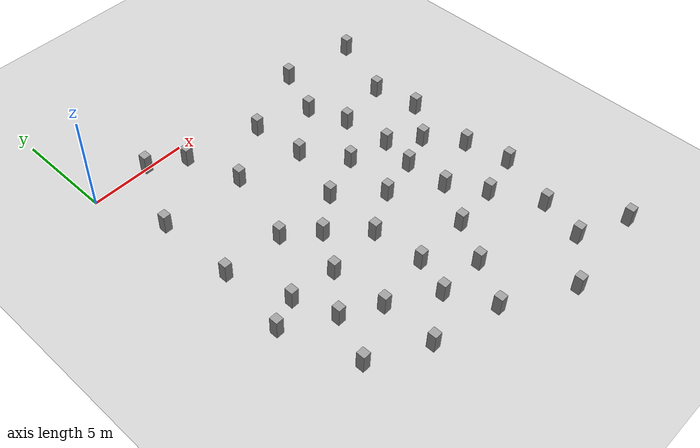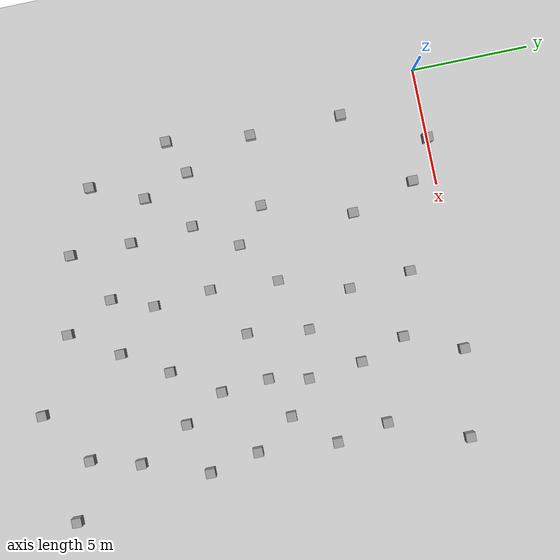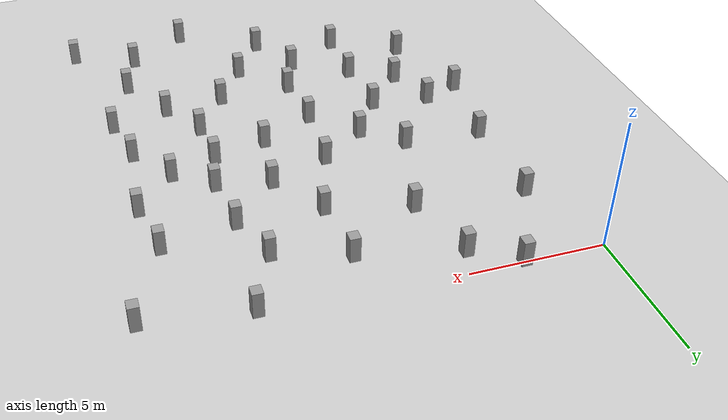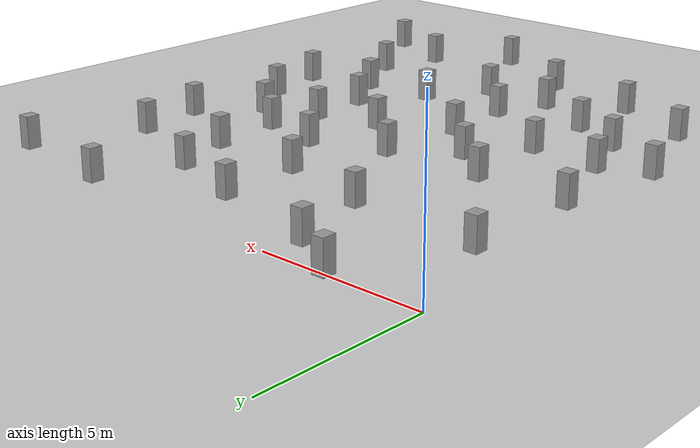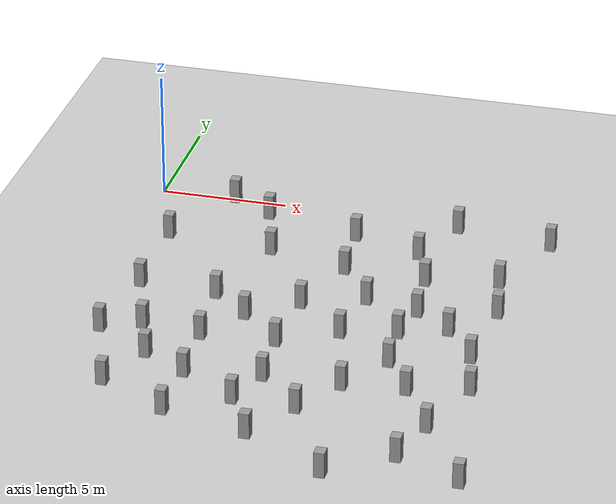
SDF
<sdf version="1.10">
 <world name="obstacle_field">
  <model name="ground_plane">
   <static>true</static>
   <link name="link">
    <collision name="collision">
     <geometry><plane><normal>0 0 1</normal><size>100 100</size></plane></geometry>
     <surface>
      <friction><ode><mu>1000</mu><mu2>1000</mu2><slip1>0</slip1><slip2>0</slip2></ode></friction>
      <bounce><restitution_coefficient>0</restitution_coefficient></bounce>
     </surface>
    </collision>
    <visual name="visual">
     <cast_shadows>false</cast_shadows>
     <geometry><plane><normal>0 0 1</normal><size>100 100</size></plane></geometry>
     <material>
      <script><uri>file://media/materials/scripts/gazebo.material</uri><name>Gazebo/Grey</name></script>
     </material>
    </visual>
    <inertial>
     <mass>1</mass>
     <inertia><ixx>1</ixx><ixy>0</ixy><ixz>0</ixz><iyy>1</iyy><iyz>0</iyz><izz>1</izz></inertia>
    </inertial>
   </link>
  </model>
  <model name="unit_box_0_clone_3">
   <static>true</static>
   <pose>8.3935060501098633 -1.9078499078750608 0.50000220537185669 -1.370750240686099e-06 -1.9236804040479009e-06 -0.00054700212289131452</pose>
   <link name="link">
    <inertial>
     <mass>1</mass>
     <inertia>
      <ixx>0.16666700000000001</ixx>
      <ixy>0</ixy>
      <ixz>0</ixz>
      <iyy>0.16666700000000001</iyy>
      <iyz>0</iyz>
      <izz>0.16666700000000001</izz>
     </inertia>
    </inertial>
    <collision name="collision">
     <geometry><box><size>0.392878 0.42264299999999999 1</size></box></geometry>
    </collision>
    <visual name="visual">
     <geometry><box><size>0.392878 0.42264299999999999 1</size></box></geometry>
     <material>
      <script><name>Gazebo/Grey</name><uri>file://media/materials/scripts/gazebo.material</uri></script>
     </material>
    </visual>
   </link>
  </model>
  <model name="unit_box_0_clone_5_clone_1">
   <static>true</static>
   <pose>8.6066904067993146 -4.5795798301696777 0.49999898672103876 -6.4980005139673518e-08 -6.4980100031907793e-08 -0.00061501101022146956</pose>
   <link name="link">
    <inertial>
     <mass>1</mass>
     <inertia>
      <ixx>0.16666700000000001</ixx>
      <ixy>0</ixy>
      <ixz>0</ixz>
      <iyy>0.16666700000000001</iyy>
      <iyz>0</iyz>
      <izz>0.16666700000000001</izz>
     </inertia>
    </inertial>
    <collision name="collision">
     <geometry><box><size>0.392878 0.42264299999999999 1</size></box></geometry>
    </collision>
    <visual name="visual">
     <geometry><box><size>0.392878 0.42264299999999999 1</size></box></geometry>
     <material>
      <script><name>Gazebo/Grey</name><uri>file://media/materials/scripts/gazebo.material</uri></script>
     </material>
    </visual>
   </link>
  </model>
  <model name="unit_box_0_clone_5_clone_2">
   <static>true</static>
   <pose>11.079571723937987 -2.7620170116424569 0.49999886751174927 -1.2996001171595163e-07 6.4980000871064096e-08 -0.0006110100471822395</pose>
   <link name="link">
    <inertial>
     <mass>1</mass>
     <inertia>
      <ixx>0.16666700000000001</ixx>
      <ixy>0</ixy>
      <ixz>0</ixz>
      <iyy>0.16666700000000001</iyy>
      <iyz>0</iyz>
      <izz>0.16666700000000001</izz>
     </inertia>
    </inertial>
    <collision name="collision">
     <geometry><box><size>0.392878 0.42264299999999999 1</size></box></geometry>
    </collision>
    <visual name="visual">
     <geometry><box><size>0.392878 0.42264299999999999 1</size></box></geometry>
     <material>
      <script><name>Gazebo/Grey</name><uri>file://media/materials/scripts/gazebo.material</uri></script>
     </material>
    </visual>
   </link>
  </model>
  <model name="unit_box_0_clone_5_clone_3">
   <static>true</static>
   <pose>11.777527809143065 -4.7175898551940918 0.49999967217445368 -1.9494004406307468e-07 6.4980013555370398e-08 -0.00059401012260828481</pose>
   <link name="link">
    <inertial>
     <mass>1</mass>
     <inertia>
      <ixx>0.16666700000000001</ixx>
      <ixy>0</ixy>
      <ixz>0</ixz>
      <iyy>0.16666700000000001</iyy>
      <iyz>0</iyz>
      <izz>0.16666700000000001</izz>
     </inertia>
    </inertial>
    <collision name="collision">
     <geometry><box><size>0.392878 0.42264299999999999 1</size></box></geometry>
    </collision>
    <visual name="visual">
     <geometry><box><size>0.392878 0.42264299999999999 1</size></box></geometry>
     <material>
      <script><name>Gazebo/Grey</name><uri>file://media/materials/scripts/gazebo.material</uri></script>
     </material>
    </visual>
   </link>
  </model>
  <model name="unit_box_0_clone_5_clone_2_clone_1">
   <static>true</static>
   <pose>4.6627094992486624 -1.0221909996353336 0.49999999632621162 -5.3290856622420438e-13 5.7520338949519755e-13 -0.00074748900662532502</pose>
   <link name="link">
    <inertial>
     <mass>1</mass>
     <inertia>
      <ixx>0.16666700000000001</ixx>
      <ixy>0</ixy>
      <ixz>0</ixz>
      <iyy>0.16666700000000001</iyy>
      <iyz>0</iyz>
      <izz>0.16666700000000001</izz>
     </inertia>
    </inertial>
    <collision name="collision">
     <geometry><box><size>0.392878 0.42264299999999999 1</size></box></geometry>
    </collision>
    <visual name="visual">
     <geometry><box><size>0.392878 0.42264299999999999 1</size></box></geometry>
     <material>
      <script><name>Gazebo/Grey</name><uri>file://media/materials/scripts/gazebo.material</uri></script>
     </material>
    </visual>
   </link>
  </model>
  <model name="unit_box_0_clone_5_clone_2_clone_2">
   <static>true</static>
   <pose>2.9894994992669472 -0.022526999643910483 0.49999999632621162 -5.3119264489559768e-13 5.6826736232843934e-13 -0.00072945448038697004</pose>
   <link name="link">
    <inertial>
     <mass>1</mass>
     <inertia>
      <ixx>0.16666700000000001</ixx>
      <ixy>0</ixy>
      <ixz>0</ixz>
      <iyy>0.16666700000000001</iyy>
      <iyz>0</iyz>
      <izz>0.16666700000000001</izz>
     </inertia>
    </inertial>
    <collision name="collision">
     <geometry><box><size>0.392878 0.42264299999999999 1</size></box></geometry>
    </collision>
    <visual name="visual">
     <geometry><box><size>0.392878 0.42264299999999999 1</size></box></geometry>
     <material>
      <script><name>Gazebo/Grey</name><uri>file://media/materials/scripts/gazebo.material</uri></script>
     </material>
    </visual>
   </link>
  </model>
  <model name="unit_box_0_clone_5_clone_2_clone_3">
   <static>true</static>
   <pose>12.111514091491701 -0.32596516609191872 0.50001299381256092 1.8970301151387148e-08 -6.8920802442025963e-06 -0.00060902103265276749</pose>
   <link name="link">
    <inertial>
     <mass>1</mass>
     <inertia>
      <ixx>0.16666700000000001</ixx>
      <ixy>0</ixy>
      <ixz>0</ixz>
      <iyy>0.16666700000000001</iyy>
      <iyz>0</iyz>
      <izz>0.16666700000000001</izz>
     </inertia>
    </inertial>
    <collision name="collision">
     <geometry><box><size>0.392878 0.42264299999999999 1</size></box></geometry>
    </collision>
    <visual name="visual">
     <geometry><box><size>0.392878 0.42264299999999999 1</size></box></geometry>
     <material>
      <script><name>Gazebo/Grey</name><uri>file://media/materials/scripts/gazebo.material</uri></script>
     </material>
    </visual>
   </link>
  </model>
  <model name="unit_box_0_clone_5_clone_2_clone_5">
   <static>true</static>
   <pose>14.542879104614256 -4.1722455024719238 0.49999919533729553 -1.299600133939024e-07 6.4980100587631842e-08 -0.00063201201838560179</pose>
   <link name="link">
    <inertial>
     <mass>1</mass>
     <inertia>
      <ixx>0.16666700000000001</ixx>
      <ixy>0</ixy>
      <ixz>0</ixz>
      <iyy>0.16666700000000001</iyy>
      <iyz>0</iyz>
      <izz>0.16666700000000001</izz>
     </inertia>
    </inertial>
    <collision name="collision">
     <geometry><box><size>0.392878 0.42264299999999999 1</size></box></geometry>
    </collision>
    <visual name="visual">
     <geometry><box><size>0.392878 0.42264299999999999 1</size></box></geometry>
     <material>
      <script><name>Gazebo/Grey</name><uri>file://media/materials/scripts/gazebo.material</uri></script>
     </material>
    </visual>
   </link>
  </model>
  <model name="unit_box_0_clone_5_clone_2_clone_1_clone">
   <static>true</static>
   <pose>15.868999998624535 -0.84647450002033475 0.49999999632621167 -5.2823337413909975e-13 -1.9489132497437662e-14 -0.00091790506168357654</pose>
   <link name="link">
    <inertial>
     <mass>1</mass>
     <inertia>
      <ixx>0.16666700000000001</ixx>
      <ixy>0</ixy>
      <ixz>0</ixz>
      <iyy>0.16666700000000001</iyy>
      <iyz>0</iyz>
      <izz>0.16666700000000001</izz>
     </inertia>
    </inertial>
    <collision name="collision">
     <geometry><box><size>0.392878 0.42264299999999999 1</size></box></geometry>
    </collision>
    <visual name="visual">
     <geometry><box><size>0.392878 0.42264299999999999 1</size></box></geometry>
     <material>
      <script><name>Gazebo/Grey</name><uri>file://media/materials/scripts/gazebo.material</uri></script>
     </material>
    </visual>
   </link>
  </model>
  <model name="unit_box_0_clone_5_clone_2_clone_1_clone_12_clone_17">
   <static>true</static>
   <pose>13.449499499305386 -8.1300309996619404 0.49999999632621162 -5.3231377874571155e-13 5.7524638652942647e-13 -0.00069138701276590358</pose>
   <link name="link">
    <inertial>
     <mass>1</mass>
     <inertia>
      <ixx>0.16666700000000001</ixx>
      <ixy>0</ixy>
      <ixz>0</ixz>
      <iyy>0.16666700000000001</iyy>
      <iyz>0</iyz>
      <izz>0.16666700000000001</izz>
     </inertia>
    </inertial>
    <collision name="collision">
     <geometry><box><size>0.392878 0.42264299999999999 1</size></box></geometry>
    </collision>
    <visual name="visual">
     <geometry><box><size>0.392878 0.42264299999999999 1</size></box></geometry>
     <material>
      <script><name>Gazebo/Grey</name><uri>file://media/materials/scripts/gazebo.material</uri></script>
     </material>
    </visual>
   </link>
  </model>
  <model name="unit_box_0_clone_5_clone_2_clone_1_clone_12_clone_20">
   <static>true</static>
   <pose>12.021301000344698 -7.067259500671585 0.49999999632621162 5.3156629166166774e-13 -5.7335368383454186e-13 -0.00067536073283902499</pose>
   <link name="link">
    <inertial>
     <mass>1</mass>
     <inertia>
      <ixx>0.16666700000000001</ixx>
      <ixy>0</ixy>
      <ixz>0</ixz>
      <iyy>0.16666700000000001</iyy>
      <iyz>0</iyz>
      <izz>0.16666700000000001</izz>
     </inertia>
    </inertial>
    <collision name="collision">
     <geometry><box><size>0.392878 0.42264299999999999 1</size></box></geometry>
    </collision>
    <visual name="visual">
     <geometry><box><size>0.392878 0.42264299999999999 1</size></box></geometry>
     <material>
      <script><name>Gazebo/Grey</name><uri>file://media/materials/scripts/gazebo.material</uri></script>
     </material>
    </visual>
   </link>
  </model>
  <model name="unit_box_0_clone_5_clone_2_clone_1_clone_12_clone_21">
   <static>true</static>
   <pose>9.9687220010228152 -6.629618501339718 0.49999999632621073 5.2740098967060101e-13 -5.6743274638398541e-13 -0.00067435912718340435</pose>
   <link name="link">
    <inertial>
     <mass>1</mass>
     <inertia>
      <ixx>0.16666700000000001</ixx>
      <ixy>0</ixy>
      <ixz>0</ixz>
      <iyy>0.16666700000000001</iyy>
      <iyz>0</iyz>
      <izz>0.16666700000000001</izz>
     </inertia>
    </inertial>
    <collision name="collision">
     <geometry><box><size>0.392878 0.42264299999999999 1</size></box></geometry>
    </collision>
    <visual name="visual">
     <geometry><box><size>0.392878 0.42264299999999999 1</size></box></geometry>
     <material>
      <script><name>Gazebo/Grey</name><uri>file://media/materials/scripts/gazebo.material</uri></script>
     </material>
    </visual>
   </link>
  </model>
  <model name="unit_box_0_clone_5_clone_2_clone_1_clone_12_clone_22">
   <static>true</static>
   <pose>7.6530220009967422 -7.5052485013061494 0.49999999632621073 5.3660089278919243e-13 -5.7639620673620265e-13 -0.00065733261890311913</pose>
   <link name="link">
    <inertial>
     <mass>1</mass>
     <inertia>
      <ixx>0.16666700000000001</ixx>
      <ixy>0</ixy>
      <ixz>0</ixz>
      <iyy>0.16666700000000001</iyy>
      <iyz>0</iyz>
      <izz>0.16666700000000001</izz>
     </inertia>
    </inertial>
    <collision name="collision">
     <geometry><box><size>0.392878 0.42264299999999999 1</size></box></geometry>
    </collision>
    <visual name="visual">
     <geometry><box><size>0.392878 0.42264299999999999 1</size></box></geometry>
     <material>
      <script><name>Gazebo/Grey</name><uri>file://media/materials/scripts/gazebo.material</uri></script>
     </material>
    </visual>
   </link>
  </model>
  <model name="unit_box_0_clone_5_clone_2_clone_1_clone_12_clone_23">
   <static>true</static>
   <pose>14.940699500666591 -6.4180589996579602 0.49999999632621162 5.3309153922079748e-13 5.6770128887452107e-13 -0.00067035277372576481</pose>
   <link name="link">
    <inertial>
     <mass>1</mass>
     <inertia>
      <ixx>0.16666700000000001</ixx>
      <ixy>0</ixy>
      <ixz>0</ixz>
      <iyy>0.16666700000000001</iyy>
      <iyz>0</iyz>
      <izz>0.16666700000000001</izz>
     </inertia>
    </inertial>
    <collision name="collision">
     <geometry><box><size>0.392878 0.42264299999999999 1</size></box></geometry>
    </collision>
    <visual name="visual">
     <geometry><box><size>0.392878 0.42264299999999999 1</size></box></geometry>
     <material>
      <script><name>Gazebo/Grey</name><uri>file://media/materials/scripts/gazebo.material</uri></script>
     </material>
    </visual>
   </link>
  </model>
  <model name="unit_box_0_clone_5_clone_2_clone_1_clone_12_clone_24">
   <static>true</static>
   <pose>15.105301000007337 -12.00210000068296 0.49999999632620978 5.3721981235759762e-15 -5.7131630233610499e-13 -0.00068337371975205551</pose>
   <link name="link">
    <inertial>
     <mass>1</mass>
     <inertia>
      <ixx>0.16666700000000001</ixx>
      <ixy>0</ixy>
      <ixz>0</ixz>
      <iyy>0.16666700000000001</iyy>
      <iyz>0</iyz>
      <izz>0.16666700000000001</izz>
     </inertia>
    </inertial>
    <collision name="collision">
     <geometry><box><size>0.392878 0.42264299999999999 1</size></box></geometry>
    </collision>
    <visual name="visual">
     <geometry><box><size>0.392878 0.42264299999999999 1</size></box></geometry>
     <material>
      <script><name>Gazebo/Grey</name><uri>file://media/materials/scripts/gazebo.material</uri></script>
     </material>
    </visual>
   </link>
  </model>
  <model name="unit_box_0_clone_5_clone_2_clone_1_clone_12_clone_25">
   <static>true</static>
   <pose>10.545401998986167 -12.814601501376536 0.49999999632621073 -5.2773819304154878e-13 -5.768429223766435e-13 -0.00068437536973678392</pose>
   <link name="link">
    <inertial>
     <mass>1</mass>
     <inertia>
      <ixx>0.16666700000000001</ixx>
      <ixy>0</ixy>
      <ixz>0</ixz>
      <iyy>0.16666700000000001</iyy>
      <iyz>0</iyz>
      <izz>0.16666700000000001</izz>
     </inertia>
    </inertial>
    <collision name="collision">
     <geometry><box><size>0.392878 0.42264299999999999 1</size></box></geometry>
    </collision>
    <visual name="visual">
     <geometry><box><size>0.392878 0.42264299999999999 1</size></box></geometry>
     <material>
      <script><name>Gazebo/Grey</name><uri>file://media/materials/scripts/gazebo.material</uri></script>
     </material>
    </visual>
   </link>
  </model>
  <model name="unit_box_0_clone_5_clone_2_clone_1_clone_12_clone_26">
   <static>true</static>
   <pose>14.134100499310666 -14.816301000354031 0.49999999632621162 -5.3386039973650646e-13 -5.7512739264260348e-13 -0.00069339038700685755</pose>
   <link name="link">
    <inertial>
     <mass>1</mass>
     <inertia>
      <ixx>0.16666700000000001</ixx>
      <ixy>0</ixy>
      <ixz>0</ixz>
      <iyy>0.16666700000000001</iyy>
      <iyz>0</iyz>
      <izz>0.16666700000000001</izz>
     </inertia>
    </inertial>
    <collision name="collision">
     <geometry><box><size>0.392878 0.42264299999999999 1</size></box></geometry>
    </collision>
    <visual name="visual">
     <geometry><box><size>0.392878 0.42264299999999999 1</size></box></geometry>
     <material>
      <script><name>Gazebo/Grey</name><uri>file://media/materials/scripts/gazebo.material</uri></script>
     </material>
    </visual>
   </link>
  </model>
  <model name="unit_box_0_clone_5_clone_2_clone_1_clone_12_clone_27">
   <static>true</static>
   <pose>11.828200499302753 -10.834901000358203 0.49999999632621162 -5.3265043639197037e-13 -5.7786967816943345e-13 -0.00070140407146919252</pose>
   <link name="link">
    <inertial>
     <mass>1</mass>
     <inertia>
      <ixx>0.16666700000000001</ixx>
      <ixy>0</ixy>
      <ixz>0</ixz>
      <iyy>0.16666700000000001</iyy>
      <iyz>0</iyz>
      <izz>0.16666700000000001</izz>
     </inertia>
    </inertial>
    <collision name="collision">
     <geometry><box><size>0.392878 0.42264299999999999 1</size></box></geometry>
    </collision>
    <visual name="visual">
     <geometry><box><size>0.392878 0.42264299999999999 1</size></box></geometry>
     <material>
      <script><name>Gazebo/Grey</name><uri>file://media/materials/scripts/gazebo.material</uri></script>
     </material>
    </visual>
   </link>
  </model>
  <model name="unit_box_0_clone_5_clone_2_clone_1_clone_12_clone_28">
   <static>true</static>
   <pose>7.456808499988048 -10.428399998942565 0.49999999632621167 -8.8482916288755953e-15 5.7607941576349497e-13 -0.00070541103107567933</pose>
   <link name="link">
    <inertial>
     <mass>1</mass>
     <inertia>
      <ixx>0.16666700000000001</ixx>
      <ixy>0</ixy>
      <ixz>0</ixz>
      <iyy>0.16666700000000001</iyy>
      <iyz>0</iyz>
      <izz>0.16666700000000001</izz>
     </inertia>
    </inertial>
    <collision name="collision">
     <geometry><box><size>0.392878 0.42264299999999999 1</size></box></geometry>
    </collision>
    <visual name="visual">
     <geometry><box><size>0.392878 0.42264299999999999 1</size></box></geometry>
     <material>
      <script><name>Gazebo/Grey</name><uri>file://media/materials/scripts/gazebo.material</uri></script>
     </material>
    </visual>
   </link>
  </model>
  <model name="unit_box_0_clone_5_clone_2_clone_1_clone_12_clone_39">
   <static>true</static>
   <pose>14.651699000379379 -9.8346894992173652 0.49999999632621162 5.3093224764815934e-13 5.7216876288163325e-13 -0.00077855249665335056</pose>
   <link name="link">
    <inertial>
     <mass>1</mass>
     <inertia>
      <ixx>0.16666700000000001</ixx>
      <ixy>0</ixy>
      <ixz>0</ixz>
      <iyy>0.16666700000000001</iyy>
      <iyz>0</iyz>
      <izz>0.16666700000000001</izz>
     </inertia>
    </inertial>
    <collision name="collision">
     <geometry><box><size>0.392878 0.42264299999999999 1</size></box></geometry>
    </collision>
    <visual name="visual">
     <geometry><box><size>0.392878 0.42264299999999999 1</size></box></geometry>
     <material>
      <script><name>Gazebo/Grey</name><uri>file://media/materials/scripts/gazebo.material</uri></script>
     </material>
    </visual>
   </link>
  </model>
  <model name="unit_box_0_clone_5_clone_2_clone_1_clone_12_clone_40">
   <static>true</static>
   <pose>9.6005909996163492 -9.2670005007917471 0.49999999632621162 -5.3106497851504232e-13 -5.7197550464449765e-13 -0.00078757190750513976</pose>
   <link name="link">
    <inertial>
     <mass>1</mass>
     <inertia>
      <ixx>0.16666700000000001</ixx>
      <ixy>0</ixy>
      <ixz>0</ixz>
      <iyy>0.16666700000000001</iyy>
      <iyz>0</iyz>
      <izz>0.16666700000000001</izz>
     </inertia>
    </inertial>
    <collision name="collision">
     <geometry><box><size>0.392878 0.42264299999999999 1</size></box></geometry>
    </collision>
    <visual name="visual">
     <geometry><box><size>0.392878 0.42264299999999999 1</size></box></geometry>
     <material>
      <script><name>Gazebo/Grey</name><uri>file://media/materials/scripts/gazebo.material</uri></script>
     </material>
    </visual>
   </link>
  </model>
  <model name="unit_box_0_clone_5_clone_2_clone_1_clone_12_clone_41">
   <static>true</static>
   <pose>4.3673509996159252 -7.5724605007927925 0.49999999632621162 -5.3603391631009016e-13 -5.7873034484668195e-13 -0.00078857409194296919</pose>
   <link name="link">
    <inertial>
     <mass>1</mass>
     <inertia>
      <ixx>0.16666700000000001</ixx>
      <ixy>0</ixy>
      <ixz>0</ixz>
      <iyy>0.16666700000000001</iyy>
      <iyz>0</iyz>
      <izz>0.16666700000000001</izz>
     </inertia>
    </inertial>
    <collision name="collision">
     <geometry><box><size>0.392878 0.42264299999999999 1</size></box></geometry>
    </collision>
    <visual name="visual">
     <geometry><box><size>0.392878 0.42264299999999999 1</size></box></geometry>
     <material>
      <script><name>Gazebo/Grey</name><uri>file://media/materials/scripts/gazebo.material</uri></script>
     </material>
    </visual>
   </link>
  </model>
  <model name="unit_box_0_clone_5_clone_2_clone_1_clone_12_clone_47">
   <static>true</static>
   <pose>5.4753204991663331 -3.7816010003919689 0.49999999632621134 5.3652379385989223e-13 -5.7547641602620041e-13 -0.00084069551092693208</pose>
   <link name="link">
    <inertial>
     <mass>1</mass>
     <inertia>
      <ixx>0.16666700000000001</ixx>
      <ixy>0</ixy>
      <ixz>0</ixz>
      <iyy>0.16666700000000001</iyy>
      <iyz>0</iyz>
      <izz>0.16666700000000001</izz>
     </inertia>
    </inertial>
    <collision name="collision">
     <geometry><box><size>0.392878 0.42264299999999999 1</size></box></geometry>
    </collision>
    <visual name="visual">
     <geometry><box><size>0.392878 0.42264299999999999 1</size></box></geometry>
     <material>
      <script><name>Gazebo/Grey</name><uri>file://media/materials/scripts/gazebo.material</uri></script>
     </material>
    </visual>
   </link>
  </model>
  <model name="unit_box_0_clone_5_clone_2_clone_1_clone_12_clone_48">
   <static>true</static>
   <pose>4.6420919987454274 -10.62250150171131 0.49999999632621073 -5.3667723470150684e-13 -5.7139722570843595e-13 -0.00084971813241443701</pose>
   <link name="link">
    <inertial>
     <mass>1</mass>
     <inertia>
      <ixx>0.16666700000000001</ixx>
      <ixy>0</ixy>
      <ixz>0</ixz>
      <iyy>0.16666700000000001</iyy>
      <iyz>0</iyz>
      <izz>0.16666700000000001</izz>
     </inertia>
    </inertial>
    <collision name="collision">
     <geometry><box><size>0.392878 0.42264299999999999 1</size></box></geometry>
    </collision>
    <visual name="visual">
     <geometry><box><size>0.392878 0.42264299999999999 1</size></box></geometry>
     <material>
      <script><name>Gazebo/Grey</name><uri>file://media/materials/scripts/gazebo.material</uri></script>
     </material>
    </visual>
   </link>
  </model>
  <model name="unit_box_0_clone_5_clone_2_clone_1_clone_12_clone_49">
   <static>true</static>
   <pose>7.6510119991718417 -12.90310100170729 0.49999999632621178 -5.3787684099559147e-13 -5.7451273440900599e-13 -0.00084971812961752099</pose>
   <link name="link">
    <inertial>
     <mass>1</mass>
     <inertia>
      <ixx>0.16666700000000001</ixx>
      <ixy>0</ixy>
      <ixz>0</ixz>
      <iyy>0.16666700000000001</iyy>
      <iyz>0</iyz>
      <izz>0.16666700000000001</izz>
     </inertia>
    </inertial>
    <collision name="collision">
     <geometry><box><size>0.392878 0.42264299999999999 1</size></box></geometry>
    </collision>
    <visual name="visual">
     <geometry><box><size>0.392878 0.42264299999999999 1</size></box></geometry>
     <material>
      <script><name>Gazebo/Grey</name><uri>file://media/materials/scripts/gazebo.material</uri></script>
     </material>
    </visual>
   </link>
  </model>
  <model name="unit_box_0_clone_5_clone_2_clone_1_clone_12_clone_51">
   <static>true</static>
   <pose>2.3461819991689254 -10.380101001713347 0.49999999632621178 -5.353181748780015e-13 -5.6724206309328105e-13 -0.00085272577572543509</pose>
   <link name="link">
    <inertial>
     <mass>1</mass>
     <inertia>
      <ixx>0.16666700000000001</ixx>
      <ixy>0</ixy>
      <ixz>0</ixz>
      <iyy>0.16666700000000001</iyy>
      <iyz>0</iyz>
      <izz>0.16666700000000001</izz>
     </inertia>
    </inertial>
    <collision name="collision">
     <geometry><box><size>0.392878 0.42264299999999999 1</size></box></geometry>
    </collision>
    <visual name="visual">
     <geometry><box><size>0.392878 0.42264299999999999 1</size></box></geometry>
     <material>
      <script><name>Gazebo/Grey</name><uri>file://media/materials/scripts/gazebo.material</uri></script>
     </material>
    </visual>
   </link>
  </model>
  <model name="unit_box_0_clone_5_clone_2_clone_1_clone_12_clone_13_clone_3">
   <static>true</static>
   <pose>11.682401500788552 -8.7629080005856839 0.49999999632620978 5.3374169455762673e-13 -5.7781938495376895e-13 -0.00039307115017697285</pose>
   <link name="link">
    <inertial>
     <mass>1</mass>
     <inertia>
      <ixx>0.16666700000000001</ixx>
      <ixy>0</ixy>
      <ixz>0</ixz>
      <iyy>0.16666700000000001</iyy>
      <iyz>0</iyz>
      <izz>0.16666700000000001</izz>
     </inertia>
    </inertial>
    <collision name="collision">
     <geometry><box><size>0.392878 0.42264299999999999 1</size></box></geometry>
    </collision>
    <visual name="visual">
     <geometry><box><size>0.392878 0.42264299999999999 1</size></box></geometry>
     <material>
      <script><name>Gazebo/Grey</name><uri>file://media/materials/scripts/gazebo.material</uri></script>
     </material>
    </visual>
   </link>
  </model>
  <model name="unit_box_0_clone_5_clone_2_clone_1_clone_12_clone_13_clone_4">
   <static>true</static>
   <pose>5.832638999804785 -8.8101604996148914 0.49999999632621162 -5.3007174611872012e-13 5.7651808304748322e-13 -0.00038606742120693552</pose>
   <link name="link">
    <inertial>
     <mass>1</mass>
     <inertia>
      <ixx>0.16666700000000001</ixx>
      <ixy>0</ixy>
      <ixz>0</ixz>
      <iyy>0.16666700000000001</iyy>
      <iyz>0</iyz>
      <izz>0.16666700000000001</izz>
     </inertia>
    </inertial>
    <collision name="collision">
     <geometry><box><size>0.392878 0.42264299999999999 1</size></box></geometry>
    </collision>
    <visual name="visual">
     <geometry><box><size>0.392878 0.42264299999999999 1</size></box></geometry>
     <material>
      <script><name>Gazebo/Grey</name><uri>file://media/materials/scripts/gazebo.material</uri></script>
     </material>
    </visual>
   </link>
  </model>
  <model name="unit_box_0_clone_5_clone_2_clone_1_clone_12_clone_13_clone_5">
   <static>true</static>
   <pose>9.3587220005826577 -14.72429850076956 0.49999999632621067 5.2960343407393438e-13 -5.7422963985894691e-13 -0.00038606741726038919</pose>
   <link name="link">
    <inertial>
     <mass>1</mass>
     <inertia>
      <ixx>0.16666700000000001</ixx>
      <ixy>0</ixy>
      <ixz>0</ixz>
      <iyy>0.16666700000000001</iyy>
      <iyz>0</iyz>
      <izz>0.16666700000000001</izz>
     </inertia>
    </inertial>
    <collision name="collision">
     <geometry><box><size>0.392878 0.42264299999999999 1</size></box></geometry>
    </collision>
    <visual name="visual">
     <geometry><box><size>0.392878 0.42264299999999999 1</size></box></geometry>
     <material>
      <script><name>Gazebo/Grey</name><uri>file://media/materials/scripts/gazebo.material</uri></script>
     </material>
    </visual>
   </link>
  </model>
  <model name="unit_box_0_clone_5_clone_2_clone_1_clone_12_clone_13_clone_6">
   <static>true</static>
   <pose>7.0007705003829681 -14.666199000188943 0.49999999632621162 5.3555795699732227e-13 -5.7734052239092567e-13 -0.00038206534646987418</pose>
   <link name="link">
    <inertial>
     <mass>1</mass>
     <inertia>
      <ixx>0.16666700000000001</ixx>
      <ixy>0</ixy>
      <ixz>0</ixz>
      <iyy>0.16666700000000001</iyy>
      <iyz>0</iyz>
      <izz>0.16666700000000001</izz>
     </inertia>
    </inertial>
    <collision name="collision">
     <geometry><box><size>0.392878 0.42264299999999999 1</size></box></geometry>
    </collision>
    <visual name="visual">
     <geometry><box><size>0.392878 0.42264299999999999 1</size></box></geometry>
     <material>
      <script><name>Gazebo/Grey</name><uri>file://media/materials/scripts/gazebo.material</uri></script>
     </material>
    </visual>
   </link>
  </model>
  <model name="unit_box_0_clone_5_clone_2_clone_1_clone_12_clone_13_clone_7">
   <static>true</static>
   <pose>12.880298499237652 -12.575201999433546 0.49999999632620978 -5.3625767807073006e-13 5.6754989810548597e-13 -0.00038006431857586686</pose>
   <link name="link">
    <inertial>
     <mass>1</mass>
     <inertia>
      <ixx>0.16666700000000001</ixx>
      <ixy>0</ixy>
      <ixz>0</ixz>
      <iyy>0.16666700000000001</iyy>
      <iyz>0</iyz>
      <izz>0.16666700000000001</izz>
     </inertia>
    </inertial>
    <collision name="collision">
     <geometry><box><size>0.392878 0.42264299999999999 1</size></box></geometry>
    </collision>
    <visual name="visual">
     <geometry><box><size>0.392878 0.42264299999999999 1</size></box></geometry>
     <material>
      <script><name>Gazebo/Grey</name><uri>file://media/materials/scripts/gazebo.material</uri></script>
     </material>
    </visual>
   </link>
  </model>
  <model name="unit_box_0_clone_5_clone_2_clone_1_clone_12_clone_13_clone_8">
   <static>true</static>
   <pose>3.0718889992485341 -12.366901999628759 0.49999999632620995 -5.3205874535709797e-13 5.6896966838986428e-13 -0.00037506181363989184</pose>
   <link name="link">
    <inertial>
     <mass>1</mass>
     <inertia>
      <ixx>0.16666700000000001</ixx>
      <ixy>0</ixy>
      <ixz>0</ixz>
      <iyy>0.16666700000000001</iyy>
      <iyz>0</iyz>
      <izz>0.16666700000000001</izz>
     </inertia>
    </inertial>
    <collision name="collision">
     <geometry><box><size>0.392878 0.42264299999999999 1</size></box></geometry>
    </collision>
    <visual name="visual">
     <geometry><box><size>0.392878 0.42264299999999999 1</size></box></geometry>
     <material>
      <script><name>Gazebo/Grey</name><uri>file://media/materials/scripts/gazebo.material</uri></script>
     </material>
    </visual>
   </link>
  </model>
  <model name="unit_box_0_clone_5_clone_2_clone_1_clone_12_clone_13_clone_41">
   <static>true</static>
   <pose>16.000000499865028 -18.000001000067822 0.49999999632621162 -5.2885301966706122e-13 -5.699681624145318e-13 -0.00013500288472440206</pose>
   <link name="link">
    <inertial>
     <mass>1</mass>
     <inertia>
      <ixx>0.16666700000000001</ixx>
      <ixy>0</ixy>
      <ixz>0</ixz>
      <iyy>0.16666700000000001</iyy>
      <iyz>0</iyz>
      <izz>0.16666700000000001</izz>
     </inertia>
    </inertial>
    <collision name="collision">
     <geometry><box><size>0.392878 0.42264299999999999 1</size></box></geometry>
    </collision>
    <visual name="visual">
     <geometry><box><size>0.392878 0.42264299999999999 1</size></box></geometry>
     <material>
      <script><name>Gazebo/Grey</name><uri>file://media/materials/scripts/gazebo.material</uri></script>
     </material>
    </visual>
   </link>
  </model>
  <model name="unit_box_0_clone_5_clone_2_clone_1_clone_12_clone_13_clone_43">
   <static>true</static>
   <pose>11.258200999713948 -18.53600200014359 0.49999999632620995 -5.3575159842742467e-13 -5.6994890607283349e-13 -0.00014300343369395293</pose>
   <link name="link">
    <inertial>
     <mass>1</mass>
     <inertia>
      <ixx>0.16666700000000001</ixx>
      <ixy>0</ixy>
      <ixz>0</ixz>
      <iyy>0.16666700000000001</iyy>
      <iyz>0</iyz>
      <izz>0.16666700000000001</izz>
     </inertia>
    </inertial>
    <collision name="collision">
     <geometry><box><size>0.392878 0.42264299999999999 1</size></box></geometry>
    </collision>
    <visual name="visual">
     <geometry><box><size>0.392878 0.42264299999999999 1</size></box></geometry>
     <material>
      <script><name>Gazebo/Grey</name><uri>file://media/materials/scripts/gazebo.material</uri></script>
     </material>
    </visual>
   </link>
  </model>
  <model name="unit_box_0_clone_5_clone_2_clone_1_clone_12_clone_13_clone_44">
   <static>true</static>
   <pose>13.550400499855899 -16.934701000072341 0.49999999632621162 -5.273161477612779e-13 -5.7752773965523824e-13 -0.00014400350077372544</pose>
   <link name="link">
    <inertial>
     <mass>1</mass>
     <inertia>
      <ixx>0.16666700000000001</ixx>
      <ixy>0</ixy>
      <ixz>0</ixz>
      <iyy>0.16666700000000001</iyy>
      <iyz>0</iyz>
      <izz>0.16666700000000001</izz>
     </inertia>
    </inertial>
    <collision name="collision">
     <geometry><box><size>0.392878 0.42264299999999999 1</size></box></geometry>
    </collision>
    <visual name="visual">
     <geometry><box><size>0.392878 0.42264299999999999 1</size></box></geometry>
     <material>
      <script><name>Gazebo/Grey</name><uri>file://media/materials/scripts/gazebo.material</uri></script>
     </material>
    </visual>
   </link>
  </model>
  <model name="unit_box_0_clone_5_clone_2_clone_1_clone_12_clone_13_clone_45">
   <static>true</static>
   <pose>8.0877580002172405 -16.757898499709629 0.49999999632621067 5.3592646395982636e-13 5.6796455847428033e-13 -0.00014500357820305146</pose>
   <link name="link">
    <inertial>
     <mass>1</mass>
     <inertia>
      <ixx>0.16666700000000001</ixx>
      <ixy>0</ixy>
      <ixz>0</ixz>
      <iyy>0.16666700000000001</iyy>
      <iyz>0</iyz>
      <izz>0.16666700000000001</izz>
     </inertia>
    </inertial>
    <collision name="collision">
     <geometry><box><size>0.392878 0.42264299999999999 1</size></box></geometry>
    </collision>
    <visual name="visual">
     <geometry><box><size>0.392878 0.42264299999999999 1</size></box></geometry>
     <material>
      <script><name>Gazebo/Grey</name><uri>file://media/materials/scripts/gazebo.material</uri></script>
     </material>
    </visual>
   </link>
  </model>
  <model name="unit_box_0_clone_5_clone_2_clone_1_clone_12_clone_13_clone_46">
   <static>true</static>
   <pose>4.8080419997828399 -13.331301500290069 0.49999999632621067 -5.3593058823801712e-13 -5.6797245312726582e-13 -0.00014500357820305138</pose>
   <link name="link">
    <inertial>
     <mass>1</mass>
     <inertia>
      <ixx>0.16666700000000001</ixx>
      <ixy>0</ixy>
      <ixz>0</ixz>
      <iyy>0.16666700000000001</iyy>
      <iyz>0</iyz>
      <izz>0.16666700000000001</izz>
     </inertia>
    </inertial>
    <collision name="collision">
     <geometry><box><size>0.392878 0.42264299999999999 1</size></box></geometry>
    </collision>
    <visual name="visual">
     <geometry><box><size>0.392878 0.42264299999999999 1</size></box></geometry>
     <material>
      <script><name>Gazebo/Grey</name><uri>file://media/materials/scripts/gazebo.material</uri></script>
     </material>
    </visual>
   </link>
  </model>
  <model name="unit_box_0_clone_5_clone_2_clone_1_clone_12_clone_13_clone_47">
   <static>true</static>
   <pose>0.8842275000002574 -10.98680000022344 0.49999999632621167 8.5192328141088594e-17 -5.6794165657606723e-13 -0.00014900387707899619</pose>
   <link name="link">
    <inertial>
     <mass>1</mass>
     <inertia>
      <ixx>0.16666700000000001</ixx>
      <ixy>0</ixy>
      <ixz>0</ixz>
      <iyy>0.16666700000000001</iyy>
      <iyz>0</iyz>
      <izz>0.16666700000000001</izz>
     </inertia>
    </inertial>
    <collision name="collision">
     <geometry><box><size>0.392878 0.42264299999999999 1</size></box></geometry>
    </collision>
    <visual name="visual">
     <geometry><box><size>0.392878 0.42264299999999999 1</size></box></geometry>
     <material>
      <script><name>Gazebo/Grey</name><uri>file://media/materials/scripts/gazebo.material</uri></script>
     </material>
    </visual>
   </link>
  </model>
  <model name="unit_box_0_clone_5_clone_2_clone_1_clone_12_clone_13_clone_48">
   <static>true</static>
   <pose>1.3434109996839994 -7.4099220001584252 0.49999999632620995 -5.3270544615617122e-13 -5.7860578188804623e-13 -0.00015800462933890938</pose>
   <link name="link">
    <inertial>
     <mass>1</mass>
     <inertia>
      <ixx>0.16666700000000001</ixx>
      <ixy>0</ixy>
      <ixz>0</ixz>
      <iyy>0.16666700000000001</iyy>
      <iyz>0</iyz>
      <izz>0.16666700000000001</izz>
     </inertia>
    </inertial>
    <collision name="collision">
     <geometry><box><size>0.392878 0.42264299999999999 1</size></box></geometry>
    </collision>
    <visual name="visual">
     <geometry><box><size>0.392878 0.42264299999999999 1</size></box></geometry>
     <material>
      <script><name>Gazebo/Grey</name><uri>file://media/materials/scripts/gazebo.material</uri></script>
     </material>
    </visual>
   </link>
  </model>
  <model name="unit_box_0_clone_5_clone_2_clone_1_clone_12_clone_13_clone_49">
   <static>true</static>
   <pose>1.2888200002369934 -3.4736484999996668 0.49999999632621167 5.3117092755094118e-13 1.0644247987445768e-16 -0.00015800462294868886</pose>
   <link name="link">
    <inertial>
     <mass>1</mass>
     <inertia>
      <ixx>0.16666700000000001</ixx>
      <ixy>0</ixy>
      <ixz>0</ixz>
      <iyy>0.16666700000000001</iyy>
      <iyz>0</iyz>
      <izz>0.16666700000000001</izz>
     </inertia>
    </inertial>
    <collision name="collision">
     <geometry><box><size>0.392878 0.42264299999999999 1</size></box></geometry>
    </collision>
    <visual name="visual">
     <geometry><box><size>0.392878 0.42264299999999999 1</size></box></geometry>
     <material>
      <script><name>Gazebo/Grey</name><uri>file://media/materials/scripts/gazebo.material</uri></script>
     </material>
    </visual>
   </link>
  </model>
  <model name="unit_box_0_clone_5_clone_2_clone_1_clone_12_clone_13_clone_66">
   <static>true</static>
   <pose>4.8027109999864388 -15.973300000205048 0.49999999632620967 -1.5132779466704354e-16 5.7135853556992274e-13 -0.00020501009767600828</pose>
   <link name="link">
    <inertial>
     <mass>1</mass>
     <inertia>
      <ixx>0.16666700000000001</ixx>
      <ixy>0</ixy>
      <ixz>0</ixz>
      <iyy>0.16666700000000001</iyy>
      <iyz>0</iyz>
      <izz>0.16666700000000001</izz>
     </inertia>
    </inertial>
    <collision name="collision">
     <geometry><box><size>0.392878 0.42264299999999999 1</size></box></geometry>
    </collision>
    <visual name="visual">
     <geometry><box><size>0.392878 0.42264299999999999 1</size></box></geometry>
     <material>
      <script><name>Gazebo/Grey</name><uri>file://media/materials/scripts/gazebo.material</uri></script>
     </material>
    </visual>
   </link>
  </model>
  <model name="unit_box_0_clone_5_clone_2_clone_1_clone_12_clone_13_clone_67">
   <static>true</static>
   <pose>2.1371504997860797 -14.575301000107425 0.49999999632621162 -5.3170884490502273e-13 -5.7123302093131335e-13 -0.00021401148800382901</pose>
   <link name="link">
    <inertial>
     <mass>1</mass>
     <inertia>
      <ixx>0.16666700000000001</ixx>
      <ixy>0</ixy>
      <ixz>0</ixz>
      <iyy>0.16666700000000001</iyy>
      <iyz>0</iyz>
      <izz>0.16666700000000001</izz>
     </inertia>
    </inertial>
    <collision name="collision">
     <geometry><box><size>0.392878 0.42264299999999999 1</size></box></geometry>
    </collision>
    <visual name="visual">
     <geometry><box><size>0.392878 0.42264299999999999 1</size></box></geometry>
     <material>
      <script><name>Gazebo/Grey</name><uri>file://media/materials/scripts/gazebo.material</uri></script>
     </material>
    </visual>
   </link>
  </model>
 </world>
</sdf>
